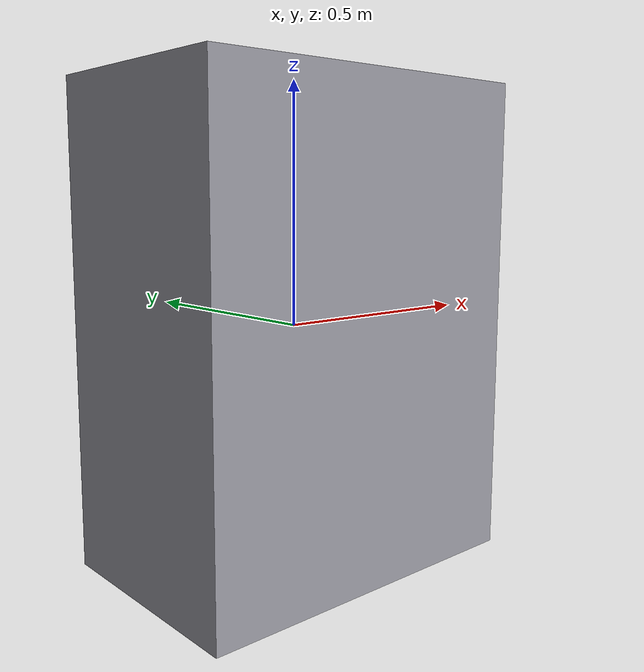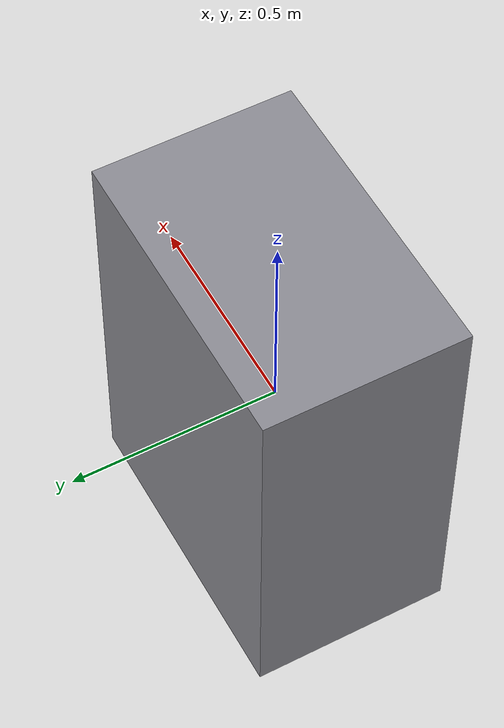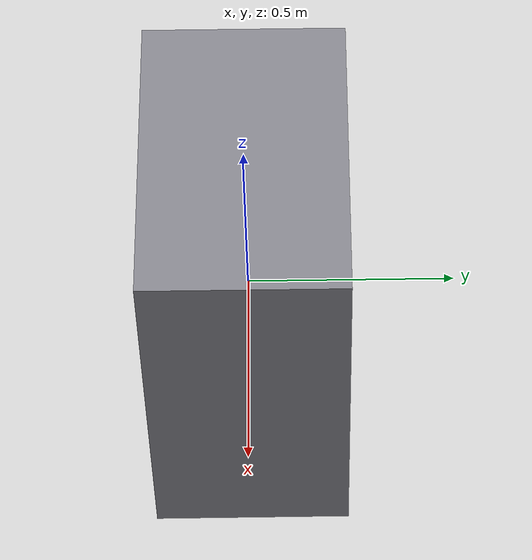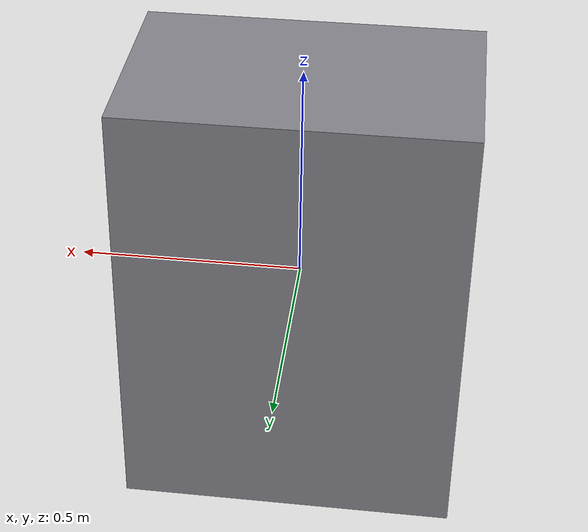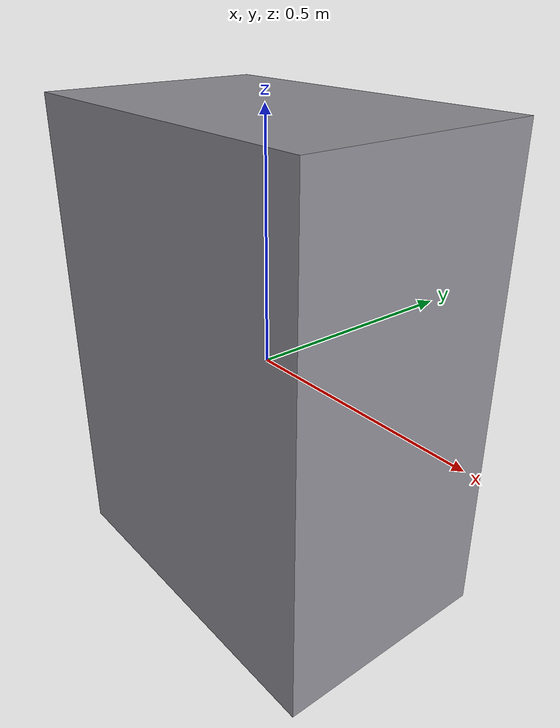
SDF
<?xml version="1.0"?>
<sdf version="1.6">
  <model name="SurgicalTrolley">
    <static>true</static>
    <link name="link">
      <collision name="col">
        <geometry>
          <box>
            <size>0.75 0.48 1.0</size>
          </box>
        </geometry>
      </collision>
      <visual name="vis">
        <geometry>
          <box>
            <size>0.75 0.48 1.0</size>
          </box>
        </geometry>
        <material>
          <ambient>0.55 0.55 0.58 1</ambient>
          <diffuse>0.55 0.55 0.58 1</diffuse>
        </material>
      </visual>
    </link>
  </model>
</sdf>
